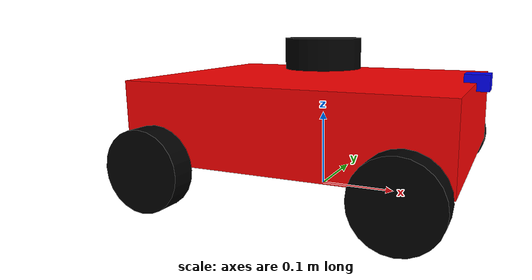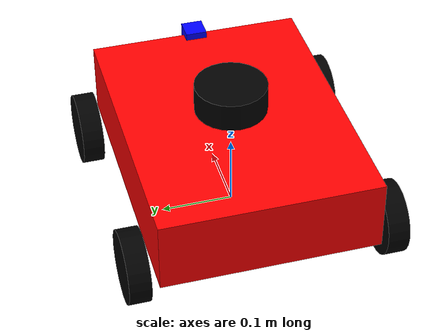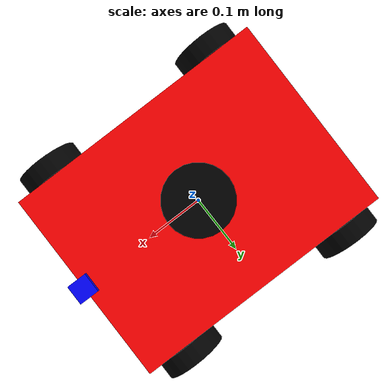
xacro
<?xml version="1.0"?>
<robot name="ackermann_bot" xmlns:xacro="http://www.ros.org/wiki/xacro">

  <!-- Include property and material files -->
  <xacro:include filename="$(find four_wheel_bot_pkg)/urdf/properties.xacro"/>
  <xacro:include filename="$(find four_wheel_bot_pkg)/urdf/materials.xacro"/>

  <!-- Base link (chassis) -->
  <link name="base_link">
    <visual>
      <origin xyz="0 0 0.1" rpy="0 0 0"/>
      <geometry>
        <box size="${chassis_length} ${chassis_width} ${chassis_height}"/>
      </geometry>
      <material name="red"/>
    </visual>
    <collision>
      <origin xyz="0 0 0.1" rpy="0 0 0"/>
      <geometry>
        <box size="${chassis_length} ${chassis_width} ${chassis_height}"/>
      </geometry>
    </collision>
    <inertial>
      <origin xyz="0 0 0.1" rpy="0 0 0"/>
      <mass value="${chassis_mass}"/>
      <xacro:box_inertia m="${chassis_mass}" l="${chassis_length}" w="${chassis_width}" h="${chassis_height}"/>
    </inertial>
  </link>

  <!-- Front steering wheels macro -->
  <xacro:macro name="front_wheel" params="wheel_name y_offset">
    <link name="${wheel_name}">
      <visual>
        <origin xyz="0 0 0" rpy="1.5708 0 0"/>
        <geometry>
          <cylinder radius="${wheel_radius}" length="${wheel_thickness}"/>
        </geometry>
        <material name="black"/>
      </visual>
      <collision>
        <origin xyz="0 0 0" rpy="1.5708 0 0"/>
        <geometry>
          <cylinder radius="${wheel_radius}" length="${wheel_thickness}"/>
        </geometry>
      </collision>
      <inertial>
        <origin xyz="0 0 0" rpy="1.5708 0 0"/>
        <mass value="${wheel_mass}"/>
        <xacro:cylinder_inertia m="${wheel_mass}" r="${wheel_radius}" h="${wheel_thickness}"/>
      </inertial>
    </link>

    <!-- Steering link -->
    <link name="${wheel_name}_steering">
      <inertial>
        <origin xyz="0 0 0" rpy="0 0 0"/>
        <mass value="0.1"/>
        <inertia ixx="0.001" ixy="0" ixz="0" iyy="0.001" iyz="0" izz="0.001"/>
      </inertial>
    </link>

    <!-- Steering joint -->
    <joint name="${wheel_name}_steering_joint" type="revolute">
      <parent link="base_link"/>
      <child link="${wheel_name}_steering"/>
      <origin xyz="${wheel_offset_x_front} ${y_offset} ${wheel_offset_z}" rpy="0 0 0"/>
      <axis xyz="0 0 1"/>
      <limit lower="-0.7854" upper="0.7854" effort="100" velocity="1"/>
    </joint>

    <!-- Wheel joint -->
    <joint name="${wheel_name}_joint" type="continuous">
      <parent link="${wheel_name}_steering"/>
      <child link="${wheel_name}"/>
      <origin xyz="0 0 0" rpy="0 0 0"/>
      <axis xyz="0 1 0"/>
    </joint>
  </xacro:macro>

  <!-- Rear wheels macro -->
  <xacro:macro name="rear_wheel" params="wheel_name y_offset">
    <link name="${wheel_name}">
      <visual>
        <origin xyz="0 0 0" rpy="1.5708 0 0"/>
        <geometry>
          <cylinder radius="${wheel_radius}" length="${wheel_thickness}"/>
        </geometry>
        <material name="black"/>
      </visual>
      <collision>
        <origin xyz="0 0 0" rpy="1.5708 0 0"/>
        <geometry>
          <cylinder radius="${wheel_radius}" length="${wheel_thickness}"/>
        </geometry>
      </collision>
      <inertial>
        <origin xyz="0 0 0" rpy="1.5708 0 0"/>
        <mass value="${wheel_mass}"/>
        <xacro:cylinder_inertia m="${wheel_mass}" r="${wheel_radius}" h="${wheel_thickness}"/>
      </inertial>
    </link>

    <joint name="${wheel_name}_joint" type="continuous">
      <parent link="base_link"/>
      <child link="${wheel_name}"/>
      <origin xyz="${wheel_offset_x_rear} ${y_offset} ${wheel_offset_z}" rpy="0 0 0"/>
      <axis xyz="0 1 0"/>
    </joint>
  </xacro:macro>

  <!-- Create wheels -->
  <xacro:front_wheel wheel_name="front_left_wheel" y_offset="${wheel_offset_y}"/>
  <xacro:front_wheel wheel_name="front_right_wheel" y_offset="-${wheel_offset_y}"/>
  <xacro:rear_wheel wheel_name="rear_left_wheel" y_offset="${wheel_offset_y}"/>
  <xacro:rear_wheel wheel_name="rear_right_wheel" y_offset="-${wheel_offset_y}"/>

  <!-- Camera Link -->
  <link name="camera_link">
    <visual>
      <origin xyz="0 0 0" rpy="0 0 0"/>
      <geometry>
        <box size="0.03 0.03 0.02"/>
      </geometry>
      <material name="blue"/>
    </visual>
    <collision>
      <origin xyz="0 0 0" rpy="0 0 0"/>
      <geometry>
        <box size="0.03 0.03 0.02"/>
      </geometry>
    </collision>
    <inertial>
      <origin xyz="0 0 0" rpy="0 0 0"/>
      <mass value="0.05"/>
      <xacro:box_inertia m="0.05" l="0.03" w="0.03" h="0.02"/>
    </inertial>
  </link>

  <!-- Camera Joint -->
  <joint name="camera_joint" type="fixed">
    <parent link="base_link"/>
    <child link="camera_link"/>
    <origin xyz="${chassis_length/2} 0 ${chassis_height + 0.05}" rpy="0 0 0"/>
  </joint>

  <!-- Lidar Link -->
  <link name="lidar_link">
    <visual>
      <origin xyz="0 0 0" rpy="0 0 0"/>
      <geometry>
        <cylinder radius="0.05" length="0.04"/>
      </geometry>
      <material name="black"/>
    </visual>
    <collision>
      <origin xyz="0 0 0" rpy="0 0 0"/>
      <geometry>
        <cylinder radius="0.05" length="0.04"/>
      </geometry>
    </collision>
    <inertial>
      <origin xyz="0 0 0" rpy="0 0 0"/>
      <mass value="0.1"/>
      <xacro:cylinder_inertia m="0.1" r="0.05" h="0.04"/>
    </inertial>
  </link>

  <!-- Lidar Joint -->
  <joint name="lidar_joint" type="fixed">
    <parent link="base_link"/>
    <child link="lidar_link"/>
    <origin xyz="0 0 ${chassis_height + 0.08}" rpy="0 0 0"/>
  </joint>

  <!-- Gazebo Ackermann steering plugin -->
  <gazebo>
    <plugin filename="gz-sim-ackermann-steering-system" name="gz::sim::systems::AckermannSteering">
      <left_joint>rear_left_wheel_joint</left_joint>
      <right_joint>rear_right_wheel_joint</right_joint>
      <left_steering_joint>front_left_wheel_steering_joint</left_steering_joint>
      <right_steering_joint>front_right_wheel_steering_joint</right_steering_joint>
      <wheel_separation>${2*wheel_offset_y}</wheel_separation>
      <kingpin_width>${2*wheel_offset_y}</kingpin_width>
      <wheel_base>${wheel_offset_x_front - wheel_offset_x_rear}</wheel_base>
      <steering_limit>0.7854</steering_limit>
      <wheel_radius>${wheel_radius}</wheel_radius>
      <odom_publish_frequency>1</odom_publish_frequency>
      <max_linear_velocity>3.0</max_linear_velocity>
      <min_linear_velocity>-3.0</min_linear_velocity>
      <max_steering_angle>0.7854</max_steering_angle>
      <min_steering_angle>-0.7854</min_steering_angle>
      <topic>cmd_vel</topic>
      <odom_topic>odom</odom_topic>
      <frame_id>odom</frame_id>
      <child_frame_id>base_link</child_frame_id>
    </plugin>
  </gazebo>

  <!-- Global Sensors System Plugin (must be defined once globally) -->
  <gazebo>
    <plugin filename="gz-sim-sensors-system" name="gz::sim::systems::Sensors">
      <render_engine>${render_engine}</render_engine>
    </plugin>
  </gazebo>

  <!-- Joint state publisher plugin -->
  <gazebo>
    <plugin filename="gz-sim-joint-state-publisher-system" name="gz::sim::systems::JointStatePublisher">
    </plugin>
  </gazebo>

  <!-- Gazebo materials -->
  <gazebo reference="base_link">
    <material>Gazebo/Red</material>
  </gazebo>

  <gazebo reference="camera_link">
    <material>Gazebo/Blue</material>
  </gazebo>

  <gazebo reference="lidar_link">
    <material>Gazebo/Black</material>
  </gazebo>

  <gazebo reference="front_left_wheel">
    <material>Gazebo/DarkGrey</material>
  </gazebo>

  <gazebo reference="front_right_wheel">
    <material>Gazebo/DarkGrey</material>
  </gazebo>

  <gazebo reference="rear_left_wheel">
    <material>Gazebo/DarkGrey</material>
  </gazebo>

  <gazebo reference="rear_right_wheel">
    <material>Gazebo/DarkGrey</material>
  </gazebo>

  <!-- Camera sensor -->
  <gazebo reference="camera_link">
    <sensor name="camera_sensor" type="camera">
      <update_rate>10</update_rate>
      <visualize>true</visualize>
      <camera name="camera">
        <horizontal_fov>1.0472</horizontal_fov>
        <image>
          <width>640</width>
          <height>480</height>
          <format>R8G8B8</format>
        </image>
        <clip>
          <near>0.1</near>
          <far>100</far>
        </clip>
      </camera>
    </sensor>
  </gazebo>

  <!-- Lidar sensor -->
  <gazebo reference="lidar_link">
    <sensor name="lidar_sensor" type="${lidar_type}">
      <update_rate>10</update_rate>
      <visualize>true</visualize>
      <always_on>true</always_on>
      <lidar>
        <scan>
          <horizontal>
            <samples>360</samples>
            <resolution>1</resolution>
            <min_angle>-3.141592</min_angle>
            <max_angle>3.141592</max_angle>
          </horizontal>
          <vertical>
            <samples>1</samples>
            <resolution>1</resolution>
            <min_angle>0</min_angle>
            <max_angle>0</max_angle>
          </vertical>
        </scan>
        <range>
          <min>0.1</min>
          <max>15.0</max>
          <resolution>0.01</resolution>
        </range>
        <noise>
          <type>gaussian</type>
          <mean>0.0</mean>
          <stddev>0.01</stddev>
        </noise>
      </lidar>
    </sensor>
  </gazebo>

</robot>

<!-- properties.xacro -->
<robot xmlns:xacro="http://www.ros.org/wiki/xacro">

  <!-- Robot properties -->
  <xacro:property name="chassis_length" value="0.4"/>
  <xacro:property name="chassis_width" value="0.3"/>
  <xacro:property name="chassis_height" value="0.1"/>
  <xacro:property name="chassis_mass" value="2.0"/>

  <xacro:property name="wheel_radius" value="0.05"/>
  <xacro:property name="wheel_thickness" value="0.03"/>
  <xacro:property name="wheel_mass" value="0.2"/>
  <xacro:property name="wheel_offset_z" value="0.05"/>

  <!-- Wheel positions relative to chassis center -->
  <xacro:property name="wheel_offset_x_front" value="0.15"/>
  <xacro:property name="wheel_offset_x_rear" value="-0.15"/>
  <xacro:property name="wheel_offset_y" value="0.175"/>

  <!-- Inertial macros -->
  <xacro:macro name="box_inertia" params="m l w h">
    <inertia ixx="${m*(h*h+l*l)/12}" ixy="0" ixz="0"
             iyy="${m*(w*w+l*l)/12}" iyz="0"
             izz="${m*(w*w+h*h)/12}"/>
  </xacro:macro>

  <xacro:macro name="cylinder_inertia" params="m r h">
    <inertia ixx="${m*(3*r*r+h*h)/12}" ixy="0" ixz="0"
             iyy="${m*(3*r*r+h*h)/12}" iyz="0"
             izz="${m*r*r/2}"/>
  </xacro:macro>
  <!-- Lidar type - can be 'gpu_lidar' or 'lidar' -->
  <xacro:property name="lidar_type" value="gpu_lidar"/>
    <!-- Render Engine Type - can be 'ogre' or 'ogre2' -->
  <xacro:property name="render_engine" value="ogre2"/>
</robot>

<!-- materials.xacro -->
<robot xmlns:xacro="http://www.ros.org/wiki/xacro">

  <!-- Material definitions -->
  <material name="blue">
    <color rgba="0.0 0.0 1.0 1.0"/>
  </material>

  <material name="red">
    <color rgba="1.0 0.0 0.0 1.0"/>
  </material>

  <material name="green">
    <color rgba="0.0 1.0 0.0 1.0"/>
  </material>

  <material name="black">
    <color rgba="0.0 0.0 0.0 1.0"/>
  </material>

  <material name="white">
    <color rgba="1.0 1.0 1.0 1.0"/>
  </material>

  <material name="orange">
    <color rgba="1.0 0.423529411765 0.0392156862745 1.0"/>
  </material>

  <material name="grey">
    <color rgba="0.5 0.5 0.5 1.0"/>
  </material>

</robot>
